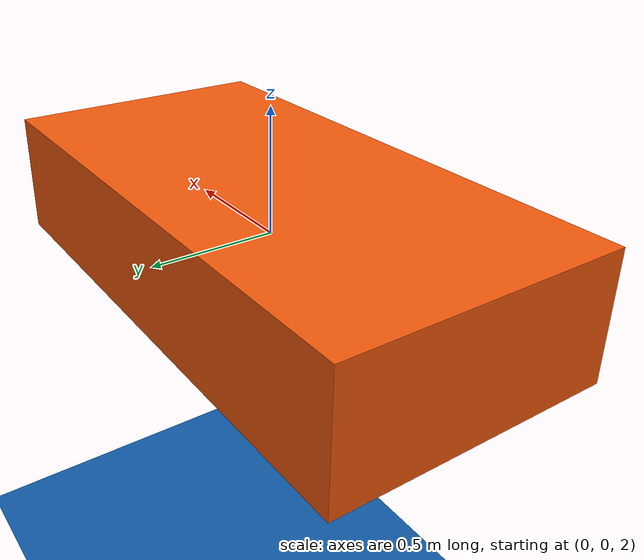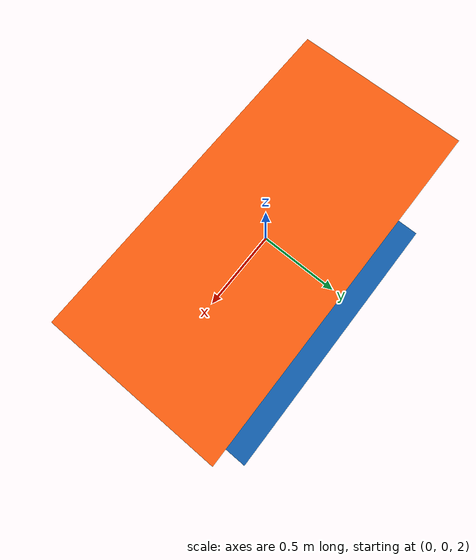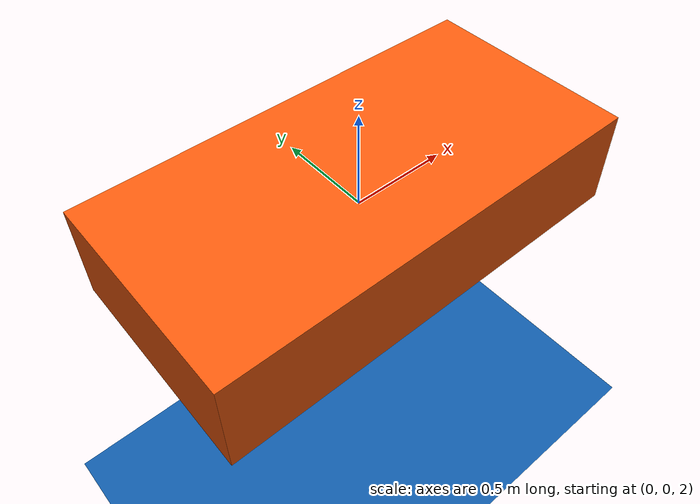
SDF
<?xml version="1.0" ?>
<sdf version="1.10">
  <world name="calm_sea">
    <gravity>0 0 -9.81</gravity>

    <physics name="physics" type="ode">
      <max_step_size>0.004</max_step_size>
      <real_time_factor>1.0</real_time_factor>
    </physics>

    <plugin filename="gz-sim-physics-system" name="gz::sim::systems::Physics"/>
    <plugin filename="gz-sim-user-commands-system" name="gz::sim::systems::UserCommands"/>
    <plugin filename="gz-sim-scene-broadcaster-system" name="gz::sim::systems::SceneBroadcaster"/>

    <light type="directional" name="sun">
      <cast_shadows>true</cast_shadows>
      <pose>0 0 20 0 0 0</pose>
      <diffuse>1 1 1 1</diffuse>
      <specular>0.2 0.2 0.2 1</specular>
      <attenuation>
        <range>1000</range>
        <constant>0.9</constant>
        <linear>0.01</linear>
        <quadratic>0.001</quadratic>
      </attenuation>
      <direction>-0.2 0.1 -0.95</direction>
    </light>

    <model name="water_surface">
      <static>true</static>
      <link name="water_link">
        <visual name="water_visual">
          <pose>0 0 0 0 0 0</pose>
          <geometry>
            <plane>
              <normal>0 0 1</normal>
              <size>300 300</size>
            </plane>
          </geometry>
          <material>
            <ambient>0.06 0.35 0.65 0.45</ambient>
            <diffuse>0.06 0.35 0.65 0.45</diffuse>
            <specular>0.2 0.2 0.25 0.3</specular>
          </material>
        </visual>
      </link>
    </model>

    <model name="usv_minimal">
      <pose>0 0 2.0 0 0 0</pose>
      <static>false</static>

      <link name="hull_link">
        <inertial>
          <mass>350.0</mass>
          <inertia>
            <ixx>42.58</ixx>
            <ixy>0.0</ixy>
            <ixz>0.0</ixz>
            <iyy>148.46</iyy>
            <iyz>0.0</iyz>
            <izz>176.46</izz>
          </inertia>
        </inertial>

        <collision name="hull_collision">
          <geometry>
            <box>
              <size>2.2 1.1 0.5</size>
            </box>
          </geometry>
        </collision>

        <visual name="hull_visual">
          <geometry>
            <box>
              <size>2.2 1.1 0.5</size>
            </box>
          </geometry>
          <material>
            <ambient>0.95 0.35 0.05 1</ambient>
            <diffuse>0.95 0.35 0.05 1</diffuse>
            <emissive>0.25 0.1 0.02 1</emissive>
          </material>
        </visual>
      </link>

      <plugin
        filename="libusv_hydro_system.so"
        name="usv_hydro::systems::HydroCellSystem">
        <link_name>hull_link</link_name>
        <fluid_density>1000.0</fluid_density>
        <water_level>0.0</water_level>
        <gravity>9.81</gravity>
        <cells_x>14</cells_x>
        <cells_y>8</cells_y>
        <cells_z>4</cells_z>
        <cd_x>0.9</cd_x>
        <cd_y>1.3</cd_y>
        <cd_z>2.0</cd_z>
        <linear_drag_x>18.0</linear_drag_x>
        <linear_drag_y>55.0</linear_drag_y>
        <linear_drag_z>80.0</linear_drag_z>
        <current_velocity>0 0 0</current_velocity>
      </plugin>
    </model>

    <scene>
      <ambient>0.7 0.7 0.7 1</ambient>
      <background>0.72 0.86 0.98 1</background>
      <shadows>true</shadows>
    </scene>
  </world>
</sdf>
